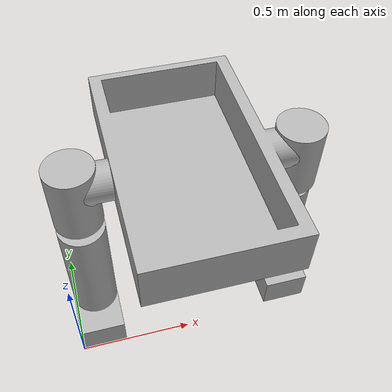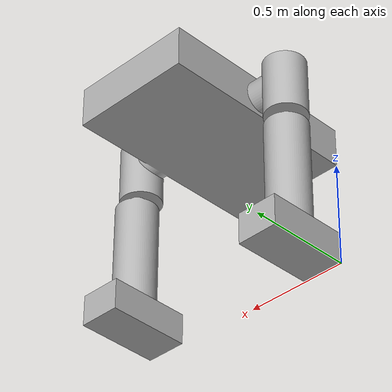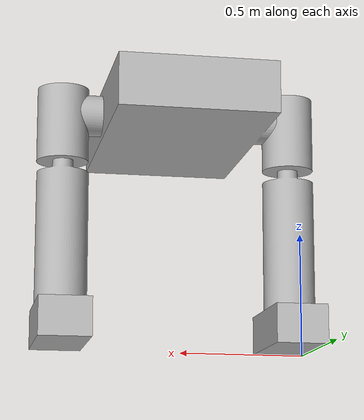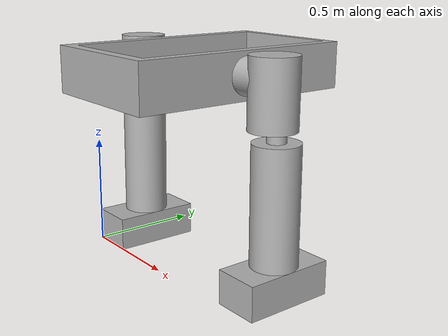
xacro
<?xml version="1.0" ?>
<robot name="Siclo1" xmlns:xacro="http://www.ros.org/wiki/xacro">

<xacro:include filename="$(find Siclo1_description)/urdf/materials.xacro" />
<xacro:include filename="$(find Siclo1_description)/urdf/Siclo1.trans" />
<xacro:include filename="$(find Siclo1_description)/urdf/Siclo1.gazebo" />
<link name="base_link">
  <inertial>
    <origin xyz="0.55 0.1839337697675572 0.8806370422241733" rpy="0 0 0"/>
    <mass value="5.999270106348153"/>
    <inertia ixx="0.628826" iyy="0.37776" izz="0.96037" ixy="0.000141" iyz="0.00285" ixz="6.4e-05"/>
  </inertial>
  <visual>
    <origin xyz="0 0 0" rpy="0 0 0"/>
    <geometry>
      <mesh filename="package://Siclo1_description/meshes/base_link.stl" scale="0.001 0.001 0.001"/>
    </geometry>
    <material name="silver"/>
  </visual>
  <collision>
    <origin xyz="0 0 0" rpy="0 0 0"/>
    <geometry>
      <mesh filename="package://Siclo1_description/meshes/base_link.stl" scale="0.001 0.001 0.001"/>
    </geometry>
  </collision>
</link>

<link name="Yaw_Link_Left_1">
  <inertial>
    <origin xyz="1.1102230246251565e-16 -5.551115123125783e-17 -0.08124999999999993" rpy="0 0 0"/>
    <mass value="0.05001800809403412"/>
    <inertia ixx="5.7e-05" iyy="5.7e-05" izz="8e-06" ixy="0.0" iyz="-0.0" ixz="0.0"/>
  </inertial>
  <visual>
    <origin xyz="-0.925 -0.2 -0.98" rpy="0 0 0"/>
    <geometry>
      <mesh filename="package://Siclo1_description/meshes/Yaw_Link_Left_1.stl" scale="0.001 0.001 0.001"/>
    </geometry>
    <material name="silver"/>
  </visual>
  <collision>
    <origin xyz="-0.925 -0.2 -0.98" rpy="0 0 0"/>
    <geometry>
      <mesh filename="package://Siclo1_description/meshes/Yaw_Link_Left_1.stl" scale="0.001 0.001 0.001"/>
    </geometry>
  </collision>
</link>

<link name="Inwards_Link_Left_1">
  <inertial>
    <origin xyz="0.0 0.017796999999999924 0.0" rpy="0 0 0"/>
    <mass value="0.05001800809403413"/>
    <inertia ixx="8e-06" iyy="5.7e-05" izz="5.7e-05" ixy="-0.0" iyz="-0.0" ixz="0.0"/>
  </inertial>
  <visual>
    <origin xyz="-0.925 -0.182203 -0.89875" rpy="0 0 0"/>
    <geometry>
      <mesh filename="package://Siclo1_description/meshes/Inwards_Link_Left_1.stl" scale="0.001 0.001 0.001"/>
    </geometry>
    <material name="silver"/>
  </visual>
  <collision>
    <origin xyz="-0.925 -0.182203 -0.89875" rpy="0 0 0"/>
    <geometry>
      <mesh filename="package://Siclo1_description/meshes/Inwards_Link_Left_1.stl" scale="0.001 0.001 0.001"/>
    </geometry>
  </collision>
</link>

<link name="Left_Upper_Leg_1">
  <inertial>
    <origin xyz="0.1407448576165632 0.001627796640034762 -0.03499248663320509" rpy="0 0 0"/>
    <mass value="0.5498281512292873"/>
    <inertia ixx="0.005497" iyy="0.005226" izz="0.002672" ixy="5.3e-05" iyz="-5.7e-05" ixz="-0.000339"/>
  </inertial>
  <visual>
    <origin xyz="-0.86875 -0.2 -0.879703" rpy="0 0 0"/>
    <geometry>
      <mesh filename="package://Siclo1_description/meshes/Left_Upper_Leg_1.stl" scale="0.001 0.001 0.001"/>
    </geometry>
    <material name="silver"/>
  </visual>
  <collision>
    <origin xyz="-0.86875 -0.2 -0.879703" rpy="0 0 0"/>
    <geometry>
      <mesh filename="package://Siclo1_description/meshes/Left_Upper_Leg_1.stl" scale="0.001 0.001 0.001"/>
    </geometry>
  </collision>
</link>

<link name="Left_Lower_Leg_1">
  <inertial>
    <origin xyz="0.09999999999999987 0.022628189726442455 -0.4154072995638456" rpy="0 0 0"/>
    <mass value="0.25056451084866793"/>
    <inertia ixx="0.006564" iyy="0.006564" izz="0.001224" ixy="-0.0" iyz="2.9e-05" ixz="0.0"/>
  </inertial>
  <visual>
    <origin xyz="-0.89975 -0.200969 -0.82757" rpy="0 0 0"/>
    <geometry>
      <mesh filename="package://Siclo1_description/meshes/Left_Lower_Leg_1.stl" scale="0.001 0.001 0.001"/>
    </geometry>
    <material name="silver"/>
  </visual>
  <collision>
    <origin xyz="-0.89975 -0.200969 -0.82757" rpy="0 0 0"/>
    <geometry>
      <mesh filename="package://Siclo1_description/meshes/Left_Lower_Leg_1.stl" scale="0.001 0.001 0.001"/>
    </geometry>
  </collision>
</link>

<link name="Left_Foot_1">
  <inertial>
    <origin xyz="-1.1102230246251565e-16 0.0004028172209023795 -0.07499853795249971" rpy="0 0 0"/>
    <mass value="0.15"/>
    <inertia ixx="0.002281" iyy="0.000781" izz="0.0025" ixy="0.0" iyz="-9e-06" ixz="0.0"/>
  </inertial>
  <visual>
    <origin xyz="-0.99975 -0.225012 -0.148352" rpy="0 0 0"/>
    <geometry>
      <mesh filename="package://Siclo1_description/meshes/Left_Foot_1.stl" scale="0.001 0.001 0.001"/>
    </geometry>
    <material name="silver"/>
  </visual>
  <collision>
    <origin xyz="-0.99975 -0.225012 -0.148352" rpy="0 0 0"/>
    <geometry>
      <mesh filename="package://Siclo1_description/meshes/Left_Foot_1.stl" scale="0.001 0.001 0.001"/>
    </geometry>
  </collision>
</link>

<link name="Yaw_Link_Right_1">
  <inertial>
    <origin xyz="0.0 2.7755575615628914e-17 0.0837500000000001" rpy="0 0 0"/>
    <mass value="0.05001800809403413"/>
    <inertia ixx="5.7e-05" iyy="5.7e-05" izz="8e-06" ixy="-0.0" iyz="0.0" ixz="0.0"/>
  </inertial>
  <visual>
    <origin xyz="-0.175 -0.2 -0.82" rpy="0 0 0"/>
    <geometry>
      <mesh filename="package://Siclo1_description/meshes/Yaw_Link_Right_1.stl" scale="0.001 0.001 0.001"/>
    </geometry>
    <material name="silver"/>
  </visual>
  <collision>
    <origin xyz="-0.175 -0.2 -0.82" rpy="0 0 0"/>
    <geometry>
      <mesh filename="package://Siclo1_description/meshes/Yaw_Link_Right_1.stl" scale="0.001 0.001 0.001"/>
    </geometry>
  </collision>
</link>

<link name="Inwards_Link_Right_1">
  <inertial>
    <origin xyz="2.498001805406602e-16 -0.018391706160032883 0.003749999999999032" rpy="0 0 0"/>
    <mass value="0.05001800809403407"/>
    <inertia ixx="8e-06" iyy="5.7e-05" izz="5.7e-05" ixy="-0.0" iyz="0.0" ixz="-0.0"/>
  </inertial>
  <visual>
    <origin xyz="-0.175 -0.217797 -0.9" rpy="0 0 0"/>
    <geometry>
      <mesh filename="package://Siclo1_description/meshes/Inwards_Link_Right_1.stl" scale="0.001 0.001 0.001"/>
    </geometry>
    <material name="silver"/>
  </visual>
  <collision>
    <origin xyz="-0.175 -0.217797 -0.9" rpy="0 0 0"/>
    <geometry>
      <mesh filename="package://Siclo1_description/meshes/Inwards_Link_Right_1.stl" scale="0.001 0.001 0.001"/>
    </geometry>
  </collision>
</link>

<link name="Right_Upper_Leg_1">
  <inertial>
    <origin xyz="-0.14074485761656322 0.0011154210407345322 -0.07170479247980155" rpy="0 0 0"/>
    <mass value="0.5498281512292872"/>
    <inertia ixx="0.005497" iyy="0.005226" izz="0.002672" ixy="-5.1e-05" iyz="-7e-05" ixz="0.00034"/>
  </inertial>
  <visual>
    <origin xyz="-0.23125 -0.2 -0.917797" rpy="0 0 0"/>
    <geometry>
      <mesh filename="package://Siclo1_description/meshes/Right_Upper_Leg_1.stl" scale="0.001 0.001 0.001"/>
    </geometry>
    <material name="silver"/>
  </visual>
  <collision>
    <origin xyz="-0.23125 -0.2 -0.917797" rpy="0 0 0"/>
    <geometry>
      <mesh filename="package://Siclo1_description/meshes/Right_Upper_Leg_1.stl" scale="0.001 0.001 0.001"/>
    </geometry>
  </collision>
</link>

<link name="Right_Lower_Leg_1">
  <inertial>
    <origin xyz="-0.02499999999999994 0.011548712597451327 -0.4949316102548527" rpy="0 0 0"/>
    <mass value="0.2505645108486679"/>
    <inertia ixx="0.006564" iyy="0.006564" izz="0.001224" ixy="0.0" iyz="-2.9e-05" ixz="-0.0"/>
  </inertial>
  <visual>
    <origin xyz="-0.12525 -0.186308 -0.909207" rpy="0 0 0"/>
    <geometry>
      <mesh filename="package://Siclo1_description/meshes/Right_Lower_Leg_1.stl" scale="0.001 0.001 0.001"/>
    </geometry>
    <material name="silver"/>
  </visual>
  <collision>
    <origin xyz="-0.12525 -0.186308 -0.909207" rpy="0 0 0"/>
    <geometry>
      <mesh filename="package://Siclo1_description/meshes/Right_Lower_Leg_1.stl" scale="0.001 0.001 0.001"/>
    </geometry>
  </collision>
</link>

<link name="Right_Foot_1">
  <inertial>
    <origin xyz="6.938893903907228e-17 -0.00040191489700858174 -0.07499884864350675" rpy="0 0 0"/>
    <mass value="0.15000000000000002"/>
    <inertia ixx="0.002281" iyy="0.000781" izz="0.0025" ixy="0.0" iyz="9e-06" ixz="0.0"/>
  </inertial>
  <visual>
    <origin xyz="-0.10025 -0.196441 -0.150465" rpy="0 0 0"/>
    <geometry>
      <mesh filename="package://Siclo1_description/meshes/Right_Foot_1.stl" scale="0.001 0.001 0.001"/>
    </geometry>
    <material name="silver"/>
  </visual>
  <collision>
    <origin xyz="-0.10025 -0.196441 -0.150465" rpy="0 0 0"/>
    <geometry>
      <mesh filename="package://Siclo1_description/meshes/Right_Foot_1.stl" scale="0.001 0.001 0.001"/>
    </geometry>
  </collision>
</link>

<joint name="Left_Hip_Twist" type="revolute">
  <origin xyz="0.925 0.2 0.98" rpy="0 0 0"/>
  <parent link="base_link"/>
  <child link="Yaw_Link_Left_1"/>
  <axis xyz="0.0 0.0 1.0"/>
  <limit upper="0.349066" lower="-0.349066" effort="100" velocity="100"/>
</joint>

<joint name="Left_Hip_Inwards" type="revolute">
  <origin xyz="0.0 -0.017797 -0.08125" rpy="0 0 0"/>
  <parent link="Yaw_Link_Left_1"/>
  <child link="Inwards_Link_Left_1"/>
  <axis xyz="-0.0 -1.0 0.0"/>
  <limit upper="0.698132" lower="-0.698132" effort="100" velocity="100"/>
</joint>

<joint name="Left_Hip_Forwards" type="revolute">
  <origin xyz="-0.05625 0.017797 -0.019047" rpy="0 0 0"/>
  <parent link="Inwards_Link_Left_1"/>
  <child link="Left_Upper_Leg_1"/>
  <axis xyz="-1.0 -0.0 -0.0"/>
  <limit upper="1.570796" lower="-1.570796" effort="100" velocity="100"/>
</joint>

<joint name="Left_Knee" type="revolute">
  <origin xyz="0.031 0.000969 -0.052133" rpy="0 0 0"/>
  <parent link="Left_Upper_Leg_1"/>
  <child link="Left_Lower_Leg_1"/>
  <axis xyz="-1.0 0.0 -0.0"/>
  <limit upper="1.570796" lower="-1.570796" effort="100" velocity="100"/>
</joint>

<joint name="Left_Ankle" type="revolute">
  <origin xyz="0.1 0.024043 -0.679218" rpy="0 0 0"/>
  <parent link="Left_Lower_Leg_1"/>
  <child link="Left_Foot_1"/>
  <axis xyz="0.0 0.005365 -0.999986"/>
  <limit upper="0.349066" lower="-0.349066" effort="100" velocity="100"/>
</joint>

<joint name="Right_Hip_Twist" type="revolute">
  <origin xyz="0.175 0.2 0.82" rpy="0 0 0"/>
  <parent link="base_link"/>
  <child link="Yaw_Link_Right_1"/>
  <axis xyz="0.0 -0.0 -1.0"/>
  <limit upper="0.349066" lower="-0.034907" effort="100" velocity="100"/>
</joint>

<joint name="Right_Hip_Inwards" type="revolute">
  <origin xyz="0.0 0.017797 0.08" rpy="0 0 0"/>
  <parent link="Yaw_Link_Right_1"/>
  <child link="Inwards_Link_Right_1"/>
  <axis xyz="0.0 -1.0 0.0"/>
  <limit upper="0.698132" lower="-0.698132" effort="100" velocity="100"/>
</joint>

<joint name="Right_Hip_Fowards" type="revolute">
  <origin xyz="0.05625 -0.017797 0.017797" rpy="0 0 0"/>
  <parent link="Inwards_Link_Right_1"/>
  <child link="Right_Upper_Leg_1"/>
  <axis xyz="1.0 0.0 0.0"/>
  <limit upper="1.570796" lower="-1.570796" effort="100" velocity="100"/>
</joint>

<joint name="Right_Knee" type="revolute">
  <origin xyz="-0.106 -0.013692 -0.00859" rpy="0 0 0"/>
  <parent link="Right_Upper_Leg_1"/>
  <child link="Right_Lower_Leg_1"/>
  <axis xyz="1.0 0.0 0.0"/>
  <limit upper="1.570796" lower="-1.570796" effort="100" velocity="100"/>
</joint>

<joint name="Right_Ankle" type="revolute">
  <origin xyz="-0.025 0.010133 -0.758742" rpy="0 0 0"/>
  <parent link="Right_Lower_Leg_1"/>
  <child link="Right_Foot_1"/>
  <axis xyz="0.0 -0.005365 -0.999986"/>
  <limit upper="0.349066" lower="-0.349066" effort="100" velocity="100"/>
</joint>

</robot>

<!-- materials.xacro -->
<robot name="Siclo1" xmlns:xacro="http://www.ros.org/wiki/xacro" >

<material name="silver">
  <color rgba="0.700 0.700 0.700 1.000"/>
</material>

</robot>

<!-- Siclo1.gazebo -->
<robot name="Siclo1" xmlns:xacro="http://www.ros.org/wiki/xacro" >

<xacro:property name="body_color" value="Gazebo/Silver" />

<gazebo>
  <plugin name="control" filename="libgazebo_ros_control.so"/>
</gazebo>
<gazebo reference="base_link">
  <material>${body_color}</material>
  <mu1>0.2</mu1>
  <mu2>0.2</mu2>
  <selfCollide>true</selfCollide>
  <gravity>true</gravity>
</gazebo>

<gazebo reference="Yaw_Link_Left_1">
  <material>${body_color}</material>
  <mu1>0.2</mu1>
  <mu2>0.2</mu2>
  <selfCollide>true</selfCollide>
</gazebo>

<gazebo reference="Inwards_Link_Left_1">
  <material>${body_color}</material>
  <mu1>0.2</mu1>
  <mu2>0.2</mu2>
  <selfCollide>true</selfCollide>
</gazebo>

<gazebo reference="Left_Upper_Leg_1">
  <material>${body_color}</material>
  <mu1>0.2</mu1>
  <mu2>0.2</mu2>
  <selfCollide>true</selfCollide>
</gazebo>

<gazebo reference="Left_Lower_Leg_1">
  <material>${body_color}</material>
  <mu1>0.2</mu1>
  <mu2>0.2</mu2>
  <selfCollide>true</selfCollide>
</gazebo>

<gazebo reference="Left_Foot_1">
  <material>${body_color}</material>
  <mu1>0.2</mu1>
  <mu2>0.2</mu2>
  <selfCollide>true</selfCollide>
</gazebo>

<gazebo reference="Yaw_Link_Right_1">
  <material>${body_color}</material>
  <mu1>0.2</mu1>
  <mu2>0.2</mu2>
  <selfCollide>true</selfCollide>
</gazebo>

<gazebo reference="Inwards_Link_Right_1">
  <material>${body_color}</material>
  <mu1>0.2</mu1>
  <mu2>0.2</mu2>
  <selfCollide>true</selfCollide>
</gazebo>

<gazebo reference="Right_Upper_Leg_1">
  <material>${body_color}</material>
  <mu1>0.2</mu1>
  <mu2>0.2</mu2>
  <selfCollide>true</selfCollide>
</gazebo>

<gazebo reference="Right_Lower_Leg_1">
  <material>${body_color}</material>
  <mu1>0.2</mu1>
  <mu2>0.2</mu2>
  <selfCollide>true</selfCollide>
</gazebo>

<gazebo reference="Right_Foot_1">
  <material>${body_color}</material>
  <mu1>0.2</mu1>
  <mu2>0.2</mu2>
  <selfCollide>true</selfCollide>
</gazebo>

</robot>
